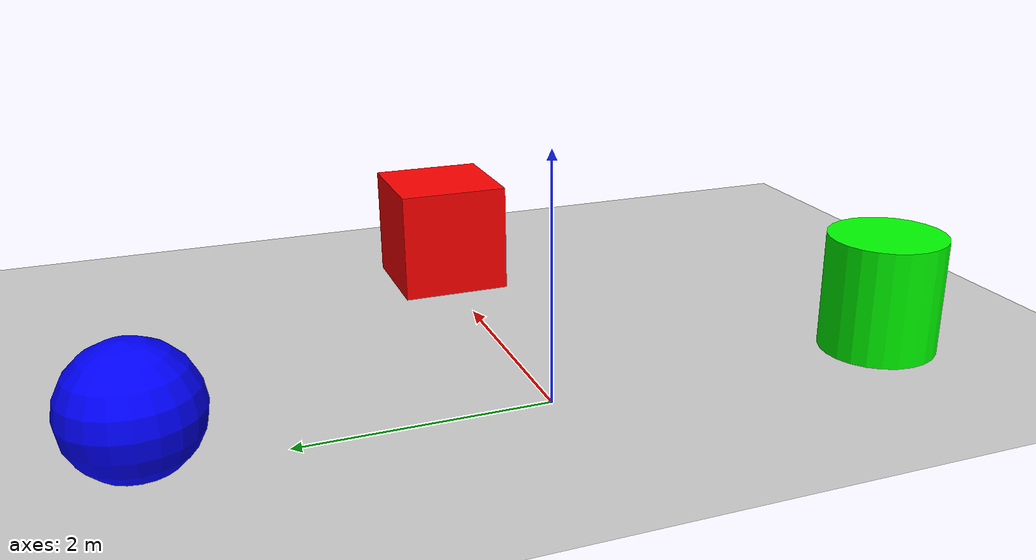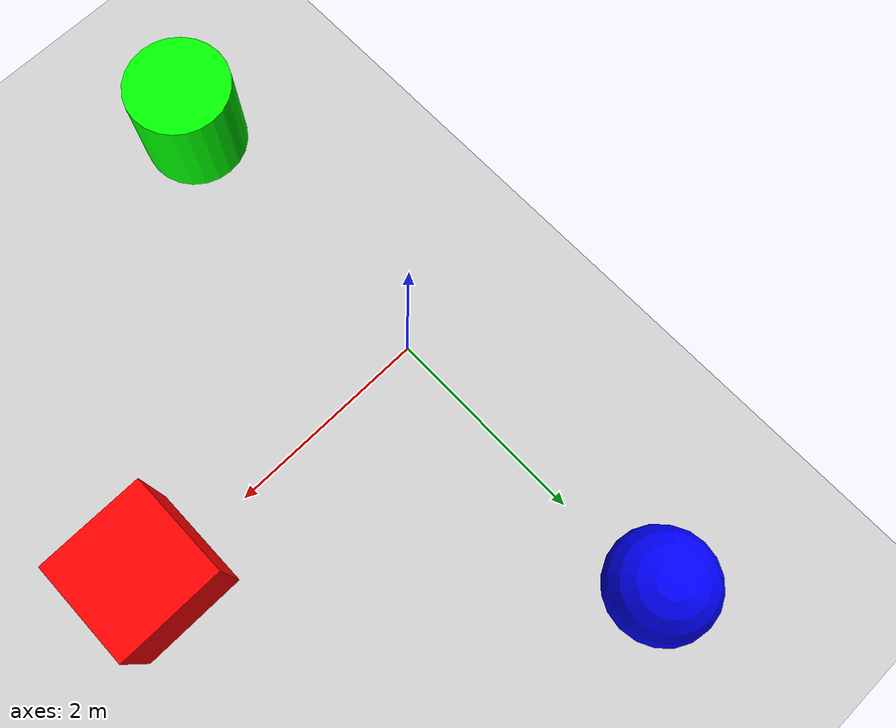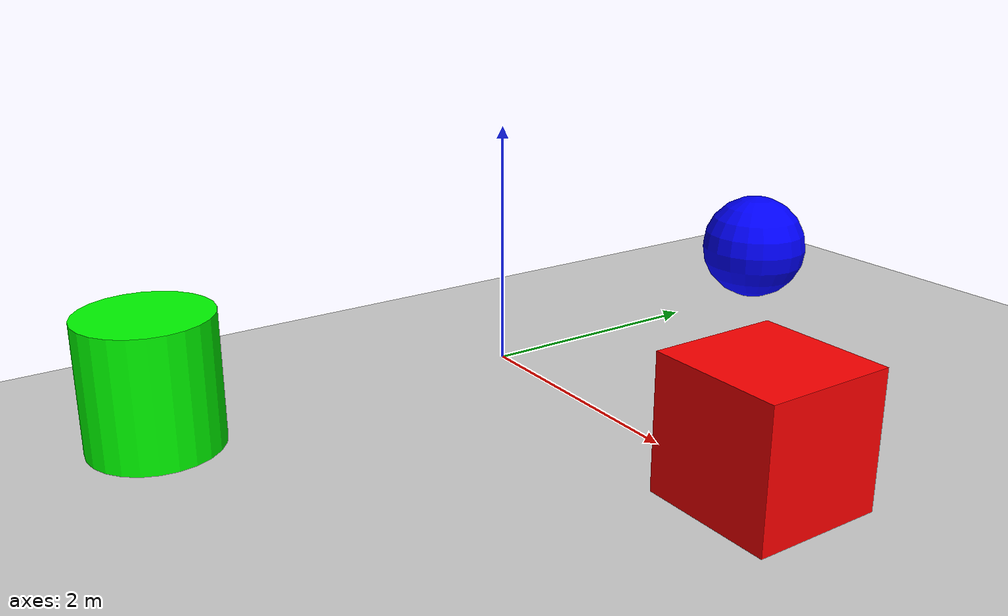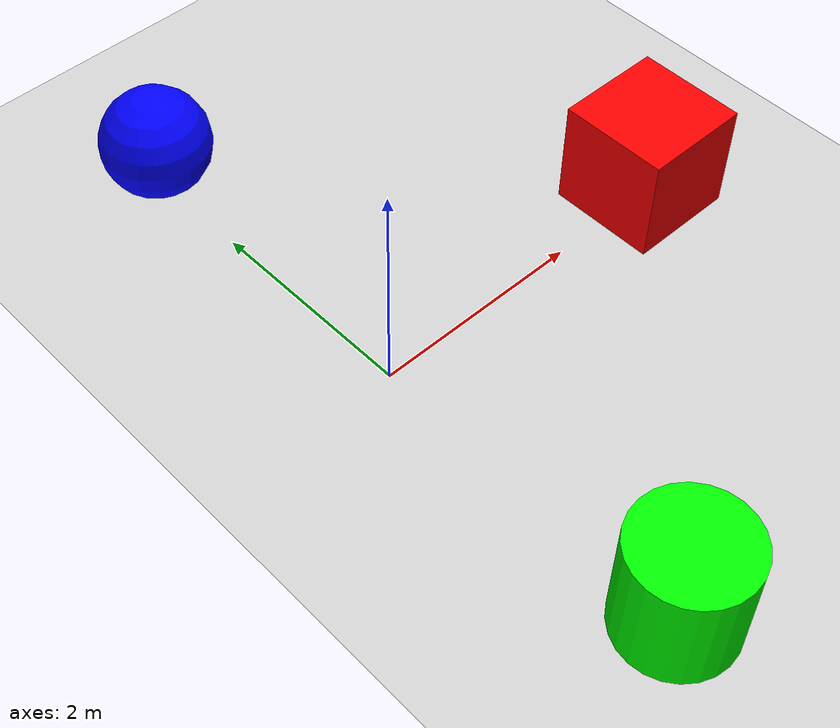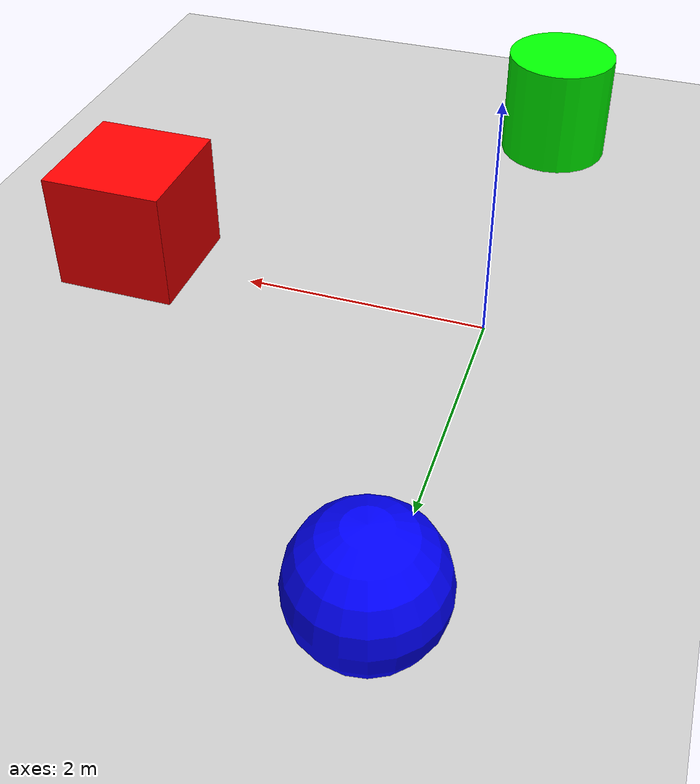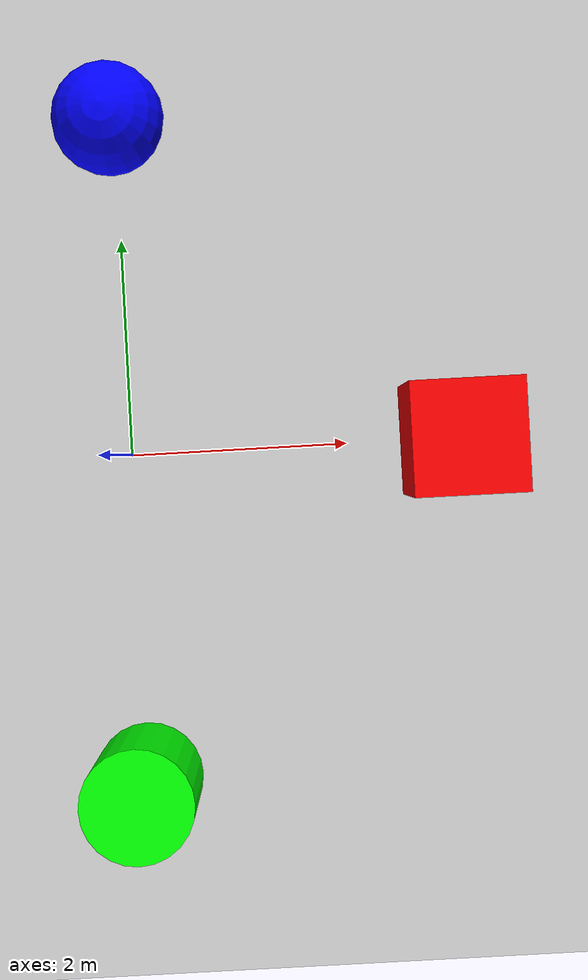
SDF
<?xml version="1.0" ?>
<sdf version="1.6">
  <world name="modular_world">

    <!-- Physics 설정 직접 포함 -->
    <physics name="sim_physics" type="ode">
      <max_step_size>0.001</max_step_size>
      <real_time_factor>1.0</real_time_factor>
      <real_time_update_rate>1000</real_time_update_rate>
      <gravity>0 0 -9.8</gravity>
      <ode>
        <solver>
          <type>quick</type>
          <iters>50</iters>
          <sor>1.3</sor>
        </solver>
        <constraints>
          <cfm>0.0</cfm>
          <erp>0.2</erp>
          <contact_max_correcting_vel>100.0</contact_max_correcting_vel>
          <contact_surface_layer>0.001</contact_surface_layer>
        </constraints>
      </ode>
    </physics>

    <!-- Plugin 설정 직접 포함 -->
    <plugin
      filename="ignition-gazebo-physics-system"
      name="ignition::gazebo::systems::Physics">
    </plugin>
    <plugin
      filename="ignition-gazebo-user-commands-system"
      name="ignition::gazebo::systems::UserCommands">
    </plugin>
    <plugin
      filename="ignition-gazebo-scene-broadcaster-system"
      name="ignition::gazebo::systems::SceneBroadcaster">
    </plugin>
    <plugin
      filename="ignition-gazebo-sensors-system"
      name="ignition::gazebo::systems::Sensors">
      <render_engine>ogre2</render_engine>
    </plugin>

    <!-- Light 설정 직접 포함 -->
    <light type="directional" name="sun">
      <cast_shadows>true</cast_shadows>
      <pose>0 0 10 0 0 0</pose>
      <diffuse>0.8 0.8 0.8 1</diffuse>
      <specular>0.2 0.2 0.2 1</specular>
      <attenuation>
        <range>1000</range>
        <constant>0.9</constant>
        <linear>0.01</linear>
        <quadratic>0.001</quadratic>
      </attenuation>
      <direction>-0.5 0.1 -0.9</direction>
    </light>

    <light type="spot" name="spotlight">
      <pose>0 0 5 0 0 0</pose>
      <diffuse>0.8 0.2 0.2 1</diffuse>
      <specular>0.2 0.2 0.2 1</specular>
      <attenuation>
        <range>20</range>
        <constant>0.5</constant>
        <linear>0.01</linear>
        <quadratic>0.001</quadratic>
      </attenuation>
      <direction>0 0 -1</direction>
      <spot>
        <inner_angle>0.1</inner_angle>
        <outer_angle>0.5</outer_angle>
        <falloff>1.0</falloff>
      </spot>
    </light>

    <!-- 모델 파일은 include 사용 (올바른 사용법) -->
    <include>
      <uri>file://model/ground_plane.sdf</uri>
    </include>

    <!-- 빨간색 박스 모델 포함 -->
    <include>
      <uri>file://model/box.sdf</uri>
      <name>red_box</name>
      <pose>3 0 0.5 0 0 0</pose>
    </include>

    <!-- 파란색 구체 모델 포함 -->
    <include>
      <uri>file://model/sphere.sdf</uri>
      <name>blue_sphere</name>
      <pose>0 3 0.5 0 0 0</pose>
    </include>

    <!-- 녹색 실린더 모델 직접 정의 -->
    <model name="green_cylinder">
      <pose>0 -3 0.5 0 0 0</pose>
      <link name="cylinder_link">
        <inertial>
          <mass>1.0</mass>
          <inertia>
            <ixx>0.1458</ixx>
            <ixy>0</ixy>
            <ixz>0</ixz>
            <iyy>0.1458</iyy>
            <iyz>0</iyz>
            <izz>0.125</izz>
          </inertia>
        </inertial>
        <collision name="cylinder_collision">
          <geometry>
            <cylinder>
              <radius>0.5</radius>
              <length>1.0</length>
            </cylinder>
          </geometry>
        </collision>
        <visual name="cylinder_visual">
          <geometry>
            <cylinder>
              <radius>0.5</radius>
              <length>1.0</length>
            </cylinder>
          </geometry>
          <material>
            <ambient>0 1 0 1</ambient>
            <diffuse>0 1 0 1</diffuse>
            <specular>0 1 0 1</specular>
          </material>
        </visual>
      </link>
    </model>
  </world>
</sdf>

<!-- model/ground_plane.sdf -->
<sdf version="1.6">
  <model name="ground_plane">
    <static>true</static>
    <link name="link">
      <collision name="collision">
        <geometry>
          <plane>
            <normal>0 0 1</normal>
            <size>100 100</size>
          </plane>
        </geometry>
        <surface>
          <friction>
            <ode>
              <mu>100</mu>
              <mu2>50</mu2>
            </ode>
          </friction>
        </surface>
      </collision>
      <visual name="visual">
        <geometry>
          <plane>
            <normal>0 0 1</normal>
            <size>100 100</size>
          </plane>
        </geometry>
        <material>
          <ambient>0.8 0.8 0.8 1</ambient>
          <diffuse>0.8 0.8 0.8 1</diffuse>
          <specular>0.8 0.8 0.8 1</specular>
        </material>
      </visual>
    </link>
  </model>
</sdf>

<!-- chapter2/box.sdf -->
<sdf version="1.6">
  <model name="box">
    <pose>0 0 0.5 0 0 0</pose>
    <link name="box_link">
      <inertial>
        <mass>1.0</mass>
        <inertia>
          <ixx>0.166667</ixx>
          <ixy>0</ixy>
          <ixz>0</ixz>
          <iyy>0.166667</iyy>
          <iyz>0</iyz>
          <izz>0.166667</izz>
        </inertia>
      </inertial>
      <collision name="box_collision">
        <geometry>
          <box>
            <size>1 1 1</size>
          </box>
        </geometry>
      </collision>
      <visual name="box_visual">
        <geometry>
          <box>
            <size>1 1 1</size>
          </box>
        </geometry>
        <material>
          <ambient>1 0 0 1</ambient>
          <diffuse>1 0 0 1</diffuse>
          <specular>1 0 0 1</specular>
        </material>
      </visual>
    </link>
  </model>
</sdf>

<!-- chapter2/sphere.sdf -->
<sdf version="1.6">
  <model name="sphere">
    <pose>2 0 0.5 0 0 0</pose>
    <link name="sphere_link">
      <inertial>
        <mass>1.0</mass>
        <inertia>
          <ixx>0.1</ixx>
          <ixy>0</ixy>
          <ixz>0</ixz>
          <iyy>0.1</iyy>
          <iyz>0</iyz>
          <izz>0.1</izz>
        </inertia>
      </inertial>
      <collision name="sphere_collision">
        <geometry>
          <sphere>
            <radius>0.5</radius>
          </sphere>
        </geometry>
      </collision>
      <visual name="sphere_visual">
        <geometry>
          <sphere>
            <radius>0.5</radius>
          </sphere>
        </geometry>
        <material>
          <ambient>0 0 1 1</ambient>
          <diffuse>0 0 1 1</diffuse>
          <specular>0 0 1 1</specular>
        </material>
      </visual>
    </link>
  </model>
</sdf>
